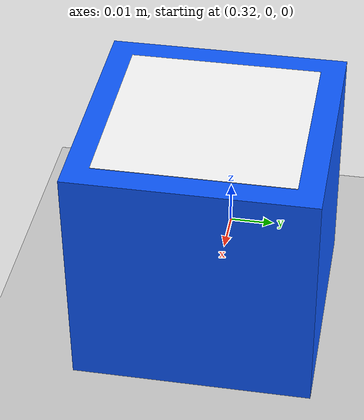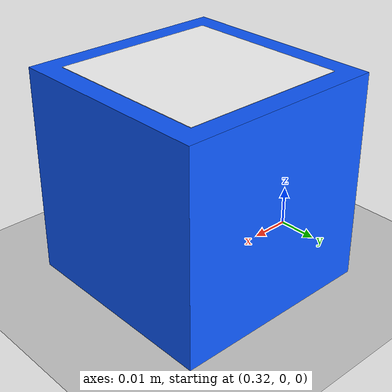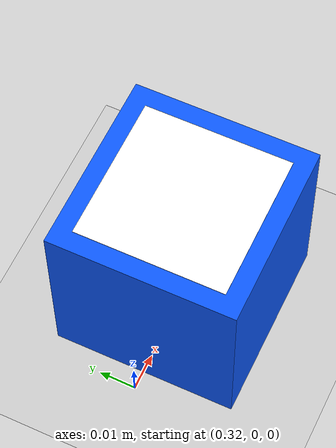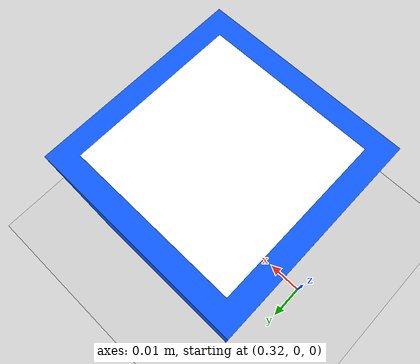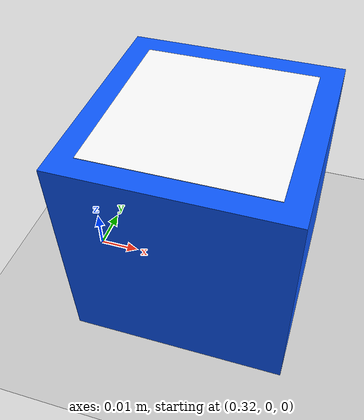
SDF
<?xml version="1.0" ?>
<sdf version="1.10">
  <world name="aruco_world">
    <physics name="1ms" type="ignored">
      <max_step_size>0.005</max_step_size>
      <real_time_factor>1.0</real_time_factor>
      <real_time_update_rate>500</real_time_update_rate>
    </physics>

    <plugin name="gz::sim::systems::Physics"
            filename="gz-sim-physics-system"/>
    <plugin name="gz::sim::systems::UserCommands"
            filename="gz-sim-user-commands-system"/>
    <plugin name="gz::sim::systems::SceneBroadcaster"
            filename="gz-sim-scene-broadcaster-system"/>
    <plugin name="gz::sim::systems::Contact"
            filename="gz-sim-contact-system"/>
    <plugin name="gz::sim::systems::Sensors"
            filename="gz-sim-sensors-system">
      <render_engine>ogre2</render_engine>
    </plugin>

    <gravity>0 0 -9.8</gravity>
    <scene>
      <ambient>0.4 0.4 0.4 1</ambient>
      <background>0.7 0.7 0.7 1</background>
      <shadows>true</shadows>
    </scene>

    <model name="ground_plane">
      <static>true</static>
      <link name="link">
        <collision name="collision">
          <geometry>
            <plane>
              <normal>0 0 1</normal>
              <size>100 100</size>
            </plane>
          </geometry>
        </collision>
        <visual name="visual">
          <geometry>
            <plane>
              <normal>0 0 1</normal>
              <size>100 100</size>
            </plane>
          </geometry>
          <material>
            <ambient>0.8 0.8 0.8 1</ambient>
            <diffuse>0.8 0.8 0.8 1</diffuse>
          </material>
        </visual>
      </link>
    </model>

    <!-- Original 5 cm box with a 4 cm DICT_4X4_50 / ID 0 marker on top. -->
    <model name="aruco_cube">
      <pose>0.35 0 0.025 0 0 0</pose>
      <link name="cube_link">
        <collision name="cube_collision">
          <geometry>
            <box>
              <size>0.05 0.05 0.05</size>
            </box>
          </geometry>
          <surface>
            <friction>
              <ode>
                <mu>15</mu>
                <mu2>15</mu2>
              </ode>
            </friction>
          </surface>
        </collision>

        <inertial>
          <mass>0.05</mass>
          <inertia>
            <ixx>0.000018</ixx>
            <iyy>0.000018</iyy>
            <izz>0.000018</izz>
            <ixy>0</ixy>
            <ixz>0</ixz>
            <iyz>0</iyz>
          </inertia>
        </inertial>

        <visual name="cube_visual">
          <geometry>
            <box>
              <size>0.05 0.05 0.05</size>
            </box>
          </geometry>
          <material>
            <ambient>0.05 0.25 0.95 1</ambient>
            <diffuse>0.05 0.35 1.0 1</diffuse>
            <specular>0.15 0.15 0.15 1</specular>
          </material>
        </visual>

        <visual name="aruco_top_visual">
          <pose>0 0 0.0251 0 0 0</pose>
          <geometry>
            <box>
              <size>0.04 0.04 0.0001</size>
            </box>
          </geometry>
          <material>
            <ambient>1 1 1 1</ambient>
            <diffuse>1 1 1 1</diffuse>
            <pbr>
              <metal>
                <albedo_map>aruco_0.png</albedo_map>
                <roughness>1.0</roughness>
                <metalness>0.0</metalness>
              </metal>
            </pbr>
          </material>
        </visual>
      </link>
    </model>

    <light name="sun" type="directional">
      <pose>0 0 10 0 0 0</pose>
      <cast_shadows>true</cast_shadows>
      <intensity>1.0</intensity>
      <direction>-0.5 0.1 -0.9</direction>
      <diffuse>0.8 0.8 0.8 1</diffuse>
      <specular>0.2 0.2 0.2 1</specular>
    </light>

    <gui>
      <camera name="user_camera">
        <pose>0.9 -0.9 0.65 0 0.48 2.35</pose>
      </camera>
    </gui>
  </world>
</sdf>
